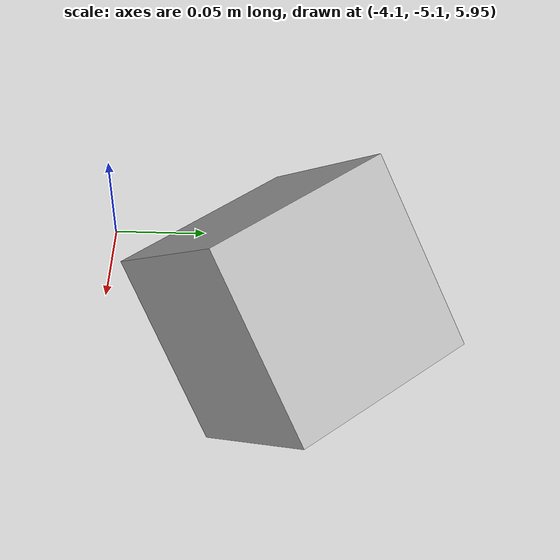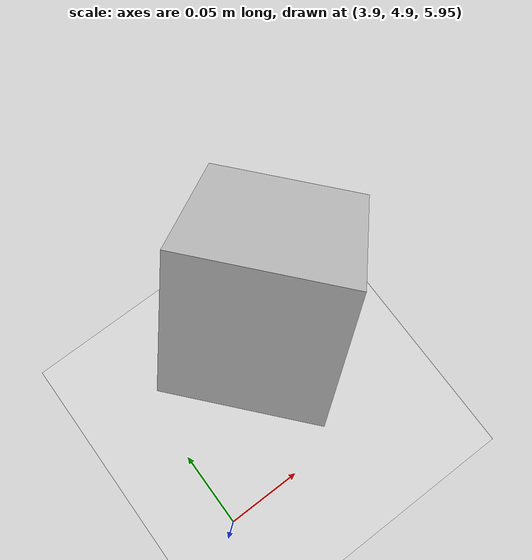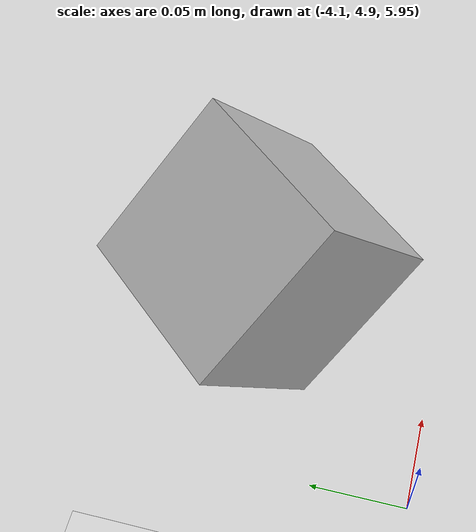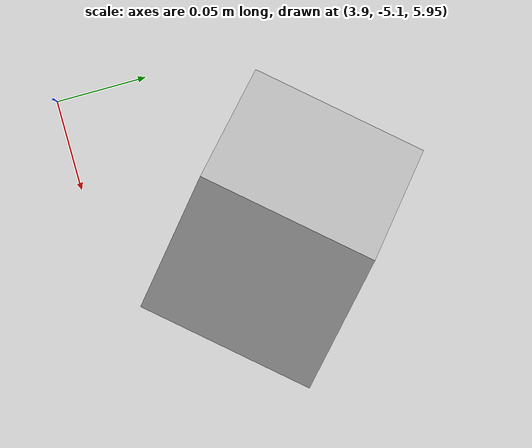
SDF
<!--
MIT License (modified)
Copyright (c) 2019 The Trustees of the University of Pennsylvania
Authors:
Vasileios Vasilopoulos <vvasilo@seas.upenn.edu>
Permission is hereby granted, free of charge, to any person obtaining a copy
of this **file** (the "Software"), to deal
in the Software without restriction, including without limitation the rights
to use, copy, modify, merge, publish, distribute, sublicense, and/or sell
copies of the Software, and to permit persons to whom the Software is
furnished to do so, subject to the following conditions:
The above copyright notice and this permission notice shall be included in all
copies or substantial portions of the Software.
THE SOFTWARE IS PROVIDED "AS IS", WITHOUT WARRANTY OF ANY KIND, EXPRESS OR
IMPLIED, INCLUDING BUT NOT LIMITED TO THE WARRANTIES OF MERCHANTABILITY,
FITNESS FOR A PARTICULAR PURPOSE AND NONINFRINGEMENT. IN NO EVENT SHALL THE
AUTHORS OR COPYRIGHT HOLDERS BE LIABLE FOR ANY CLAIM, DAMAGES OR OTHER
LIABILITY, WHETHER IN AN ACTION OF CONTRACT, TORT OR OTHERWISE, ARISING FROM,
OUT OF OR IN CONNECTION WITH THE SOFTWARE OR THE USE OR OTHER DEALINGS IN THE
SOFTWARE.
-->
<sdf version="1.6">
 <world name="default">
  <light name="sun" type="directional">
   <pose>0 0 10 0 -0 0</pose>
   <diffuse>0.8 0.8 0.8 1</diffuse>
   <specular>0.1 0.1 0.1 1</specular>
   <attenuation>
    <range>1000</range>
    <constant>0.9</constant>
    <linear>0.01</linear>
    <quadratic>0.001</quadratic>
   </attenuation>
   <direction>-0.5 0.5 -1</direction>
  </light>
  <model name="ground_plane">
   <static>1</static>
   <link name="link">
    <collision name="collision">
     <geometry><plane><normal>0 0 1</normal><size>100 100</size></plane></geometry>
     <surface><friction><ode><mu>100</mu><mu2>50</mu2></ode></friction></surface>
    </collision>
    <visual name="visual">
     <cast_shadows>0</cast_shadows>
     <geometry><plane><normal>0 0 1</normal><size>100 100</size></plane></geometry>
     <material>
      <script><uri>file://media/materials/scripts/gazebo.material</uri><name>Gazebo/Grey</name></script>
     </material>
    </visual>
   </link>
  </model>
  <gravity>0 0 -9.81</gravity>
  <magnetic_field>6e-06 2.3e-05 -4.2e-05</magnetic_field>
  <atmosphere type="adiabatic"/>
  <physics name="default_physics" default="0" type="ode">
   <max_step_size>0.0001</max_step_size>
   <real_time_factor>1</real_time_factor>
   <real_time_update_rate>10000</real_time_update_rate>
  </physics>
  <scene><ambient>0.4 0.4 0.4 1</ambient><background>0.7 0.7 0.7 1</background><shadows>1</shadows></scene>
  <spherical_coordinates>
   <surface_model>EARTH_WGS84</surface_model>
   <latitude_deg>0</latitude_deg>
   <longitude_deg>0</longitude_deg>
   <elevation>0</elevation>
   <heading_deg>0</heading_deg>
  </spherical_coordinates>
  <joint name="tag_table_joint" type="fixed">
   <child>table_tag::link</child>
   <parent>table_conference_2::link_3</parent>
  </joint>
  <model name="camera1">
   <static>true</static>
   <pose>-4 -5 6 0 0.86 0.72</pose>
   <link name="link">
    <visual name="visual">
     <cast_shadows>0</cast_shadows>
     <geometry><box><size>0.1 0.1 0.1</size></box></geometry>
    </visual>
    <sensor name="my_camera" type="camera">
     <camera>
      <save enabled="true"><path>/home/kodlab/gazebo_camera_1</path></save>
      <horizontal_fov>1.5</horizontal_fov>
      <image><width>1920</width><height>1080</height></image>
      <clip><near>0.1</near><far>100</far></clip>
     </camera>
     <always_on>1</always_on>
     <update_rate>30</update_rate>
    </sensor>
   </link>
  </model>
  <model name="camera2">
   <static>true</static>
   <pose>4 -5 6 0 0.86 2.42</pose>
   <link name="link">
    <visual name="visual">
     <cast_shadows>0</cast_shadows>
     <geometry><box><size>0.1 0.1 0.1</size></box></geometry>
    </visual>
    <sensor name="my_camera" type="camera">
     <camera>
      <save enabled="true"><path>/home/kodlab/gazebo_camera_2</path></save>
      <horizontal_fov>1.5</horizontal_fov>
      <image><width>1920</width><height>1080</height></image>
      <clip><near>0.1</near><far>100</far></clip>
     </camera>
     <always_on>1</always_on>
     <update_rate>30</update_rate>
    </sensor>
   </link>
  </model>
  <model name="camera3">
   <static>true</static>
   <pose>4 5 6 0 0.86 -2.42</pose>
   <link name="link">
    <visual name="visual">
     <cast_shadows>0</cast_shadows>
     <geometry><box><size>0.1 0.1 0.1</size></box></geometry>
    </visual>
    <sensor name="my_camera" type="camera">
     <camera>
      <save enabled="true"><path>/home/kodlab/gazebo_camera_3</path></save>
      <horizontal_fov>1.5</horizontal_fov>
      <image><width>1920</width><height>1080</height></image>
      <clip><near>0.1</near><far>100</far></clip>
     </camera>
     <always_on>1</always_on>
     <update_rate>30</update_rate>
    </sensor>
   </link>
  </model>
  <model name="camera4">
   <static>true</static>
   <pose>-4 5 6 0 0.86 -0.72</pose>
   <link name="link">
    <visual name="visual">
     <cast_shadows>0</cast_shadows>
     <geometry><box><size>0.1 0.1 0.1</size></box></geometry>
    </visual>
    <sensor name="my_camera" type="camera">
     <camera>
      <save enabled="true"><path>/home/kodlab/gazebo_camera_4</path></save>
      <horizontal_fov>1.5</horizontal_fov>
      <image><width>1920</width><height>1080</height></image>
      <clip><near>0.1</near><far>100</far></clip>
     </camera>
     <always_on>1</always_on>
     <update_rate>30</update_rate>
    </sensor>
   </link>
  </model>
 </world>
</sdf>
